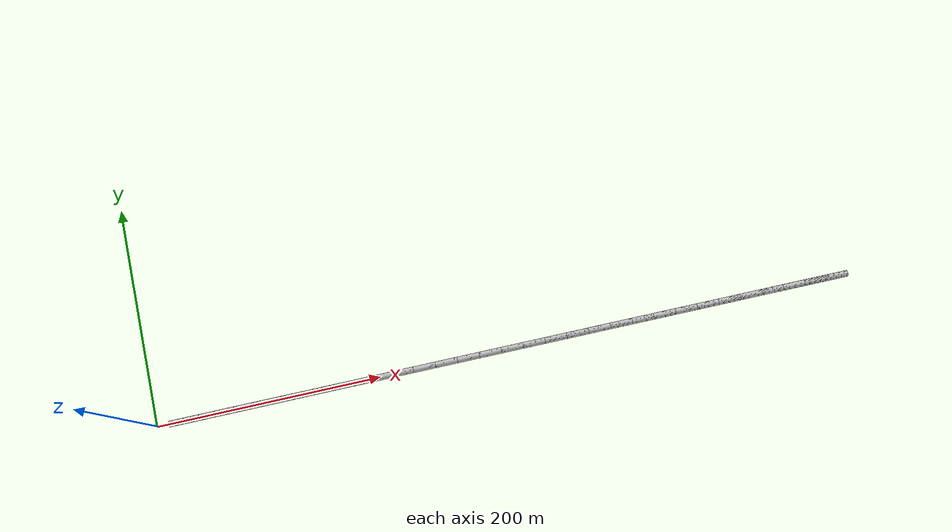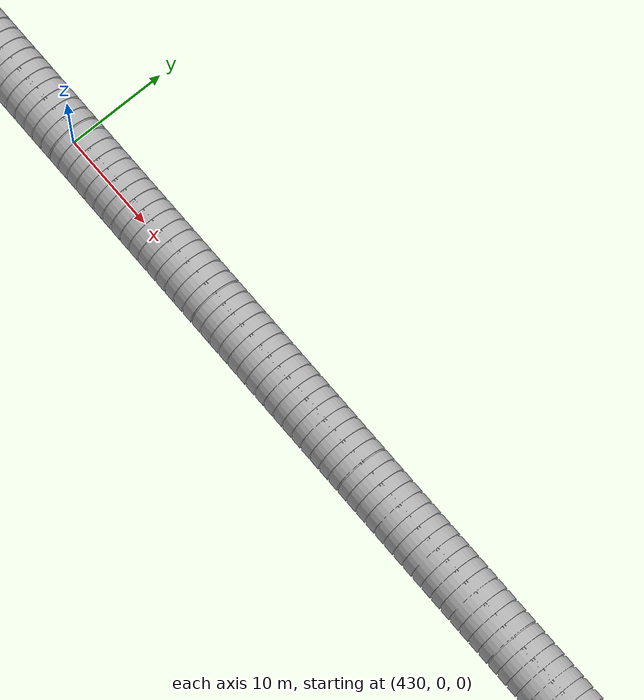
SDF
<sdf version="1.6">
 <world name="simple_tunnel">
  <physics name="1ms" type="ode">
   <max_step_size>0.004</max_step_size>
   <real_time_factor>1.0</real_time_factor>
   <real_time_update_rate>100</real_time_update_rate>
  </physics>
  <scene>
   <ambient>0.588235 0.588235 0.588235 1</ambient>
   <background>0.980392 0.980392 0.980392 1</background>
   <grid>true</grid>
   <origin_visual>true</origin_visual>
  </scene>
  <plugin filename="gz-sim-physics-system" name="gz::sim::systems::Physics"/>
  <plugin filename="gz-sim-user-commands-system" name="gz::sim::systems::UserCommands"/>
  <plugin filename="gz-sim-scene-broadcaster-system" name="gz::sim::systems::SceneBroadcaster"/>
  <plugin filename="gz-sim-imu-system" name="gz::sim::systems::Imu"/>
  <plugin filename="gz-sim-sensors-system" name="gz::sim::systems::Sensors">
   <render_engine>ogre2</render_engine>
  </plugin>
  <include>
   <name>tile_1</name>
   <uri>model://tunnel_tile_5</uri>
   <pose>20.0   0.0 0.0 0 0 -1.570796</pose>
  </include>
  <include>
   <name>tile_2</name>
   <uri>model://tunnel_tile_5</uri>
   <pose>40.0   0.0 0.0 0 0 -1.570796</pose>
  </include>
  <include>
   <name>tile_3</name>
   <uri>model://tunnel_tile_5</uri>
   <pose>60.0   0.0 0.0 0 0 -1.570796</pose>
  </include>
  <include>
   <name>tile_4</name>
   <uri>model://tunnel_tile_5</uri>
   <pose>80.0   0.0 0.0 0 0 -1.570796</pose>
  </include>
  <include>
   <name>tile_5</name>
   <uri>model://tunnel_tile_5</uri>
   <pose>100.0  0.0 0.0 0 0 -1.570796</pose>
  </include>
  <include>
   <name>tile_6</name>
   <uri>model://tunnel_tile_5</uri>
   <pose>120.0  0.0 0.0 0 0 -1.570796</pose>
  </include>
  <include>
   <name>tile_7</name>
   <uri>model://tunnel_tile_5</uri>
   <pose>140.0  0.0 0.0 0 0 -1.570796</pose>
  </include>
  <include>
   <name>tile_8</name>
   <uri>model://tunnel_tile_5</uri>
   <pose>160.0  0.0 0.0 0 0 -1.570796</pose>
  </include>
  <include>
   <name>tile_9</name>
   <uri>model://tunnel_tile_5</uri>
   <pose>180.0  0.0 0.0 0 0 -1.570796</pose>
  </include>
  <include>
   <name>tile_10</name>
   <uri>model://tunnel_tile_5</uri>
   <pose>200.0  0.0 0.0 0 0 -1.570796</pose>
  </include>
  <include>
   <name>tile_11</name>
   <uri>model://tunnel_tile_5</uri>
   <pose>220.0  0.0 0.0 0 0 -1.570796</pose>
  </include>
  <include>
   <name>tile_12</name>
   <uri>model://tunnel_tile_5</uri>
   <pose>240.0  0.0 0.0 0 0 -1.570796</pose>
  </include>
  <include>
   <name>tile_13</name>
   <uri>model://tunnel_tile_5</uri>
   <pose>260.0  0.0 0.0 0 0 -1.570796</pose>
  </include>
  <include>
   <name>tile_14</name>
   <uri>model://tunnel_tile_5</uri>
   <pose>280.0  0.0 0.0 0 0 -1.570796</pose>
  </include>
  <include>
   <name>tile_15</name>
   <uri>model://tunnel_tile_5</uri>
   <pose>300.0  0.0 0.0 0 0 -1.570796</pose>
  </include>
  <include>
   <name>tile_16</name>
   <uri>model://tunnel_tile_5</uri>
   <pose>320.0  0.0 0.0 0 0 -1.570796</pose>
  </include>
  <include>
   <name>tile_17</name>
   <uri>model://tunnel_tile_5</uri>
   <pose>340.0  0.0 0.0 0 0 -1.570796</pose>
  </include>
  <include>
   <name>tile_18</name>
   <uri>model://tunnel_tile_5</uri>
   <pose>360.0  0.0 0.0 0 0 -1.570796</pose>
  </include>
  <include>
   <name>tile_19</name>
   <uri>model://tunnel_tile_5</uri>
   <pose>380.0  0.0 0.0 0 0 -1.570796</pose>
  </include>
  <include>
   <name>tile_20</name>
   <uri>model://tunnel_tile_5</uri>
   <pose>400.0  0.0 0.0 0 0 -1.570796</pose>
  </include>
  <include>
   <name>tile_21</name>
   <uri>model://tunnel_tile_5</uri>
   <pose>420.0  0.0 0.0 0 0 -1.570796</pose>
  </include>
  <include>
   <name>tile_22</name>
   <uri>model://tunnel_tile_5</uri>
   <pose>440.0  0.0 0.0 0 0 -1.570796</pose>
  </include>
  <include>
   <name>tile_23</name>
   <uri>model://tunnel_tile_5</uri>
   <pose>460.0  0.0 0.0 0 0 -1.570796</pose>
  </include>
  <include>
   <name>tile_24</name>
   <uri>model://tunnel_tile_5</uri>
   <pose>480.0  0.0 0.0 0 0 -1.570796</pose>
  </include>
  <include>
   <name>tile_25</name>
   <uri>model://tunnel_tile_5</uri>
   <pose>500.0  0.0 0.0 0 0 -1.570796</pose>
  </include>
  <include>
   <name>tile_26</name>
   <uri>model://tunnel_tile_5</uri>
   <pose>520.0  0.0 0.0 0 0 -1.570796</pose>
  </include>
  <include>
   <name>tile_27</name>
   <uri>model://tunnel_tile_5</uri>
   <pose>540.0  0.0 0.0 0 0 -1.570796</pose>
  </include>
  <include>
   <name>tile_28</name>
   <uri>model://tunnel_tile_5</uri>
   <pose>560.0  0.0 0.0 0 0 -1.570796</pose>
  </include>
  <include>
   <name>tile_29</name>
   <uri>model://tunnel_tile_5</uri>
   <pose>580.0  0.0 0.0 0 0 -1.570796</pose>
  </include>
  <include>
   <name>tile_30</name>
   <uri>model://tunnel_tile_5</uri>
   <pose>600.0  0.0 0.0 0 0 -1.570796</pose>
  </include>
  <include>
   <name>tile_31</name>
   <uri>model://tunnel_tile_5</uri>
   <pose>620.0  0.0 0.0 0 0 -1.570796</pose>
  </include>
 </world>
</sdf>

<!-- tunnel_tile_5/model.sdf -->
<sdf version="1.6">
  <model name="tunnel_tile_5">
    <static>true</static>
    <link name="link">
      <collision name="collision">
        <geometry>
          <mesh>
            <uri>model://tunnel_tile_5/meshes/tunnel_tile_5.dae</uri>
          </mesh>
        </geometry>
      </collision>
      <collision name="collision_ground">
        <geometry>
          <box>
            <size>5 20 0.001</size>
          </box>
        </geometry>
      </collision>
      <visual name="visual">
        <geometry>
          <mesh>
            <uri>model://tunnel_tile_5/meshes/tunnel_tile_5.dae</uri>
          </mesh>
        </geometry>
      </visual>
    </link>
  </model>
</sdf>
